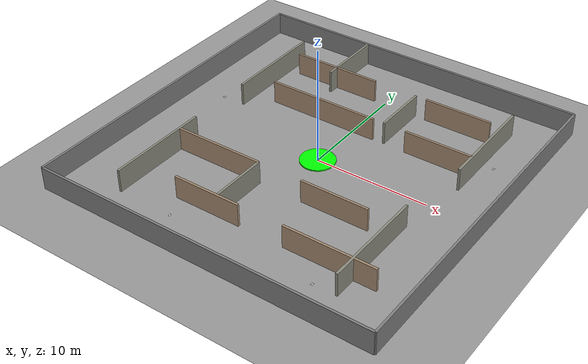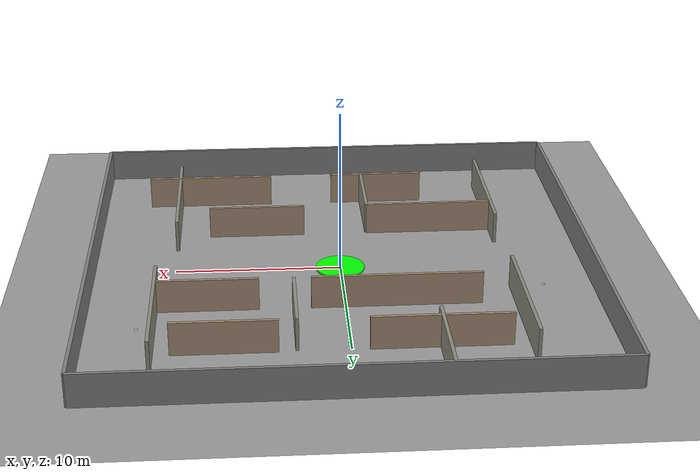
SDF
<sdf version="1.6">
 <world name="rescue_swarm_world">
  <physics type="ode">
   <max_step_size>0.004</max_step_size>
   <real_time_factor>1.0</real_time_factor>
   <real_time_update_rate>250</real_time_update_rate>
  </physics>
  <scene><ambient>0.4 0.4 0.4 1</ambient><background>0.7 0.7 0.7 1</background><shadows>true</shadows></scene>
  <light type="directional" name="sun">
   <pose>0 0 10 0 0 0</pose>
   <diffuse>0.8 0.8 0.8 1</diffuse>
   <specular>0.2 0.2 0.2 1</specular>
   <direction>-0.5 0.1 -0.9</direction>
  </light>
  <model name="ground_plane">
   <static>true</static>
   <link name="link">
    <collision name="collision">
     <geometry><plane><normal>0 0 1</normal><size>50 50</size></plane></geometry>
     <surface><friction><ode><mu>100</mu><mu2>50</mu2></ode></friction></surface>
    </collision>
    <visual name="visual">
     <geometry><plane><normal>0 0 1</normal><size>50 50</size></plane></geometry>
     <material><ambient>0.3 0.3 0.3 1</ambient><diffuse>0.6 0.6 0.6 1</diffuse></material>
    </visual>
   </link>
  </model>
  <model name="wall_north">
   <static>true</static>
   <pose>0 15 1 0 0 0</pose>
   <link name="link">
    <collision name="collision"><geometry><box><size>30 0.2 2</size></box></geometry></collision>
    <visual name="visual">
     <geometry><box><size>30 0.2 2</size></box></geometry>
     <material><ambient>0.5 0.5 0.5 1</ambient></material>
    </visual>
   </link>
  </model>
  <model name="wall_south">
   <static>true</static>
   <pose>0 -15 1 0 0 0</pose>
   <link name="link">
    <collision name="collision"><geometry><box><size>30 0.2 2</size></box></geometry></collision>
    <visual name="visual">
     <geometry><box><size>30 0.2 2</size></box></geometry>
     <material><ambient>0.5 0.5 0.5 1</ambient></material>
    </visual>
   </link>
  </model>
  <model name="wall_east">
   <static>true</static>
   <pose>15 0 1 0 0 1.5708</pose>
   <link name="link">
    <collision name="collision"><geometry><box><size>30 0.2 2</size></box></geometry></collision>
    <visual name="visual">
     <geometry><box><size>30 0.2 2</size></box></geometry>
     <material><ambient>0.5 0.5 0.5 1</ambient></material>
    </visual>
   </link>
  </model>
  <model name="wall_west">
   <static>true</static>
   <pose>-15 0 1 0 0 1.5708</pose>
   <link name="link">
    <collision name="collision"><geometry><box><size>30 0.2 2</size></box></geometry></collision>
    <visual name="visual">
     <geometry><box><size>30 0.2 2</size></box></geometry>
     <material><ambient>0.5 0.5 0.5 1</ambient></material>
    </visual>
   </link>
  </model>
  <model name="maze_wall_h1">
   <static>true</static>
   <pose>-5 10 1 0 0 0</pose>
   <link name="link">
    <collision name="collision"><geometry><box><size>8 0.2 2</size></box></geometry></collision>
    <visual name="visual">
     <geometry><box><size>8 0.2 2</size></box></geometry>
     <material><ambient>0.65 0.55 0.45 1</ambient></material>
    </visual>
   </link>
  </model>
  <model name="maze_wall_h2">
   <static>true</static>
   <pose>7 10 1 0 0 0</pose>
   <link name="link">
    <collision name="collision"><geometry><box><size>6 0.2 2</size></box></geometry></collision>
    <visual name="visual">
     <geometry><box><size>6 0.2 2</size></box></geometry>
     <material><ambient>0.65 0.55 0.45 1</ambient></material>
    </visual>
   </link>
  </model>
  <model name="maze_wall_h3">
   <static>true</static>
   <pose>-3 5 1 0 0 0</pose>
   <link name="link">
    <collision name="collision"><geometry><box><size>10 0.2 2</size></box></geometry></collision>
    <visual name="visual">
     <geometry><box><size>10 0.2 2</size></box></geometry>
     <material><ambient>0.65 0.55 0.45 1</ambient></material>
    </visual>
   </link>
  </model>
  <model name="maze_wall_h4">
   <static>true</static>
   <pose>8 5 1 0 0 0</pose>
   <link name="link">
    <collision name="collision"><geometry><box><size>6 0.2 2</size></box></geometry></collision>
    <visual name="visual">
     <geometry><box><size>6 0.2 2</size></box></geometry>
     <material><ambient>0.65 0.55 0.45 1</ambient></material>
    </visual>
   </link>
  </model>
  <model name="maze_wall_h5">
   <static>true</static>
   <pose>-6 -5 1 0 0 0</pose>
   <link name="link">
    <collision name="collision"><geometry><box><size>8 0.2 2</size></box></geometry></collision>
    <visual name="visual">
     <geometry><box><size>8 0.2 2</size></box></geometry>
     <material><ambient>0.65 0.55 0.45 1</ambient></material>
    </visual>
   </link>
  </model>
  <model name="maze_wall_h6">
   <static>true</static>
   <pose>5 -5 1 0 0 0</pose>
   <link name="link">
    <collision name="collision"><geometry><box><size>6 0.2 2</size></box></geometry></collision>
    <visual name="visual">
     <geometry><box><size>6 0.2 2</size></box></geometry>
     <material><ambient>0.65 0.55 0.45 1</ambient></material>
    </visual>
   </link>
  </model>
  <model name="maze_wall_h7">
   <static>true</static>
   <pose>-3 -10 1 0 0 0</pose>
   <link name="link">
    <collision name="collision"><geometry><box><size>6 0.2 2</size></box></geometry></collision>
    <visual name="visual">
     <geometry><box><size>6 0.2 2</size></box></geometry>
     <material><ambient>0.65 0.55 0.45 1</ambient></material>
    </visual>
   </link>
  </model>
  <model name="maze_wall_h8">
   <static>true</static>
   <pose>8 -10 1 0 0 0</pose>
   <link name="link">
    <collision name="collision"><geometry><box><size>8 0.2 2</size></box></geometry></collision>
    <visual name="visual">
     <geometry><box><size>8 0.2 2</size></box></geometry>
     <material><ambient>0.65 0.55 0.45 1</ambient></material>
    </visual>
   </link>
  </model>
  <model name="maze_wall_v1">
   <static>true</static>
   <pose>-10 7.5 1 0 0 0</pose>
   <link name="link">
    <collision name="collision"><geometry><box><size>0.2 9 2</size></box></geometry></collision>
    <visual name="visual">
     <geometry><box><size>0.2 9 2</size></box></geometry>
     <material><ambient>0.55 0.55 0.50 1</ambient></material>
    </visual>
   </link>
  </model>
  <model name="maze_wall_v2">
   <static>true</static>
   <pose>-5 12 1 0 0 0</pose>
   <link name="link">
    <collision name="collision"><geometry><box><size>0.2 6 2</size></box></geometry></collision>
    <visual name="visual">
     <geometry><box><size>0.2 6 2</size></box></geometry>
     <material><ambient>0.55 0.55 0.50 1</ambient></material>
    </visual>
   </link>
  </model>
  <model name="maze_wall_v3">
   <static>true</static>
   <pose>3 7.5 1 0 0 0</pose>
   <link name="link">
    <collision name="collision"><geometry><box><size>0.2 5 2</size></box></geometry></collision>
    <visual name="visual">
     <geometry><box><size>0.2 5 2</size></box></geometry>
     <material><ambient>0.55 0.55 0.50 1</ambient></material>
    </visual>
   </link>
  </model>
  <model name="maze_wall_v4">
   <static>true</static>
   <pose>11 7.5 1 0 0 0</pose>
   <link name="link">
    <collision name="collision"><geometry><box><size>0.2 9 2</size></box></geometry></collision>
    <visual name="visual">
     <geometry><box><size>0.2 9 2</size></box></geometry>
     <material><ambient>0.55 0.55 0.50 1</ambient></material>
    </visual>
   </link>
  </model>
  <model name="maze_wall_v5">
   <static>true</static>
   <pose>-2 -7.5 1 0 0 0</pose>
   <link name="link">
    <collision name="collision"><geometry><box><size>0.2 5 2</size></box></geometry></collision>
    <visual name="visual">
     <geometry><box><size>0.2 5 2</size></box></geometry>
     <material><ambient>0.55 0.55 0.50 1</ambient></material>
    </visual>
   </link>
  </model>
  <model name="maze_wall_v6">
   <static>true</static>
   <pose>10 -7.5 1 0 0 0</pose>
   <link name="link">
    <collision name="collision"><geometry><box><size>0.2 9 2</size></box></geometry></collision>
    <visual name="visual">
     <geometry><box><size>0.2 9 2</size></box></geometry>
     <material><ambient>0.55 0.55 0.50 1</ambient></material>
    </visual>
   </link>
  </model>
  <model name="maze_wall_v7">
   <static>true</static>
   <pose>-10 -7.5 1 0 0 0</pose>
   <link name="link">
    <collision name="collision"><geometry><box><size>0.2 9 2</size></box></geometry></collision>
    <visual name="visual">
     <geometry><box><size>0.2 9 2</size></box></geometry>
     <material><ambient>0.55 0.55 0.50 1</ambient></material>
    </visual>
   </link>
  </model>
  <model name="victim_0">
   <static>true</static>
   <pose>-7 12 0.02 0 0 0</pose>
   <include><uri>model://aruco_marker_0</uri></include>
  </model>
  <model name="victim_1">
   <static>true</static>
   <pose>-12 3 0.02 0 0 0</pose>
   <include><uri>model://aruco_marker_1</uri></include>
  </model>
  <model name="victim_2">
   <static>true</static>
   <pose>12 7 0.02 0 0 0</pose>
   <include><uri>model://aruco_marker_2</uri></include>
  </model>
  <model name="victim_3">
   <static>true</static>
   <pose>-5 -12 0.02 0 0 0</pose>
   <include><uri>model://aruco_marker_3</uri></include>
  </model>
  <model name="victim_4">
   <static>true</static>
   <pose>8 -12 0.02 0 0 0</pose>
   <include><uri>model://aruco_marker_4</uri></include>
  </model>
  <model name="safety_zone">
   <static>true</static>
   <pose>0 0 0.05 0 0 0</pose>
   <link name="link">
    <visual name="visual">
     <geometry><cylinder><radius>1.5</radius><length>0.1</length></cylinder></geometry>
     <material><ambient>0 1 0 1</ambient><diffuse>0 1 0 1</diffuse><emissive>0 0.3 0 1</emissive></material>
    </visual>
   </link>
  </model>
 </world>
</sdf>

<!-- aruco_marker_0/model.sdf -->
<sdf version="1.6">
  <model name="aruco_marker_0">
    <static>true</static>
    <link name="link">
      <visual name="visual">
        <geometry>
          <box>
            <size>0.2 0.2 0.001</size>
          </box>
        </geometry>
        <material>
          <script>
            <uri>model://aruco_marker/materials/scripts</uri>
            <uri>model://aruco_marker/materials/textures</uri>
            <name>ArUcoMarker/Marker0</name>
          </script>
        </material>
      </visual>
    </link>
  </model>
</sdf>

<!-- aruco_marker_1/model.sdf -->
<sdf version="1.6">
  <model name="aruco_marker_1">
    <static>true</static>
    <link name="link">
      <visual name="visual">
        <geometry>
          <box>
            <size>0.2 0.2 0.001</size>
          </box>
        </geometry>
        <material>
          <script>
            <uri>model://aruco_marker/materials/scripts</uri>
            <uri>model://aruco_marker/materials/textures</uri>
            <name>ArUcoMarker/Marker1</name>
          </script>
        </material>
      </visual>
    </link>
  </model>
</sdf>

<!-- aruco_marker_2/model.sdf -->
<sdf version="1.6">
  <model name="aruco_marker_2">
    <static>true</static>
    <link name="link">
      <visual name="visual">
        <geometry>
          <box>
            <size>0.2 0.2 0.001</size>
          </box>
        </geometry>
        <material>
          <script>
            <uri>model://aruco_marker/materials/scripts</uri>
            <uri>model://aruco_marker/materials/textures</uri>
            <name>ArUcoMarker/Marker2</name>
          </script>
        </material>
      </visual>
    </link>
  </model>
</sdf>

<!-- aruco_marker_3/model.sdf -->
<sdf version="1.6">
  <model name="aruco_marker_3">
    <static>true</static>
    <link name="link">
      <visual name="visual">
        <geometry>
          <box>
            <size>0.2 0.2 0.001</size>
          </box>
        </geometry>
        <material>
          <script>
            <uri>model://aruco_marker/materials/scripts</uri>
            <uri>model://aruco_marker/materials/textures</uri>
            <name>ArUcoMarker/Marker3</name>
          </script>
        </material>
      </visual>
    </link>
  </model>
</sdf>

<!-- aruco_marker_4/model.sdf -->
<sdf version="1.6">
  <model name="aruco_marker_4">
    <static>true</static>
    <link name="link">
      <visual name="visual">
        <geometry>
          <box>
            <size>0.2 0.2 0.001</size>
          </box>
        </geometry>
        <material>
          <script>
            <uri>model://aruco_marker/materials/scripts</uri>
            <uri>model://aruco_marker/materials/textures</uri>
            <name>ArUcoMarker/Marker4</name>
          </script>
        </material>
      </visual>
    </link>
  </model>
</sdf>
